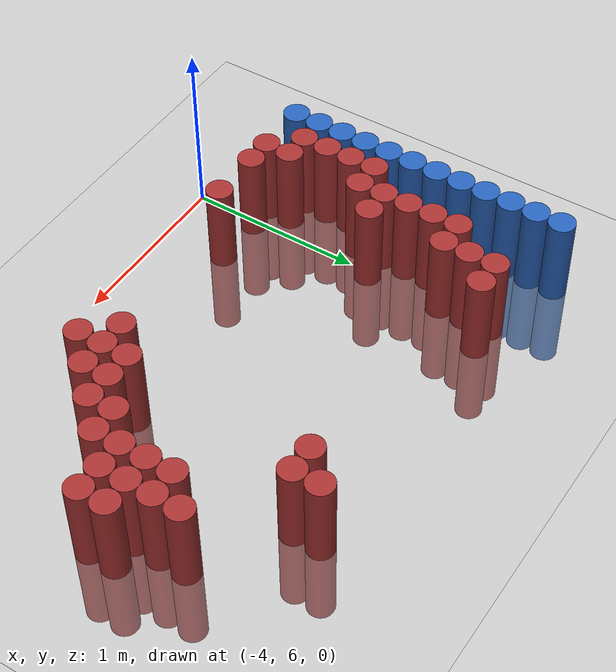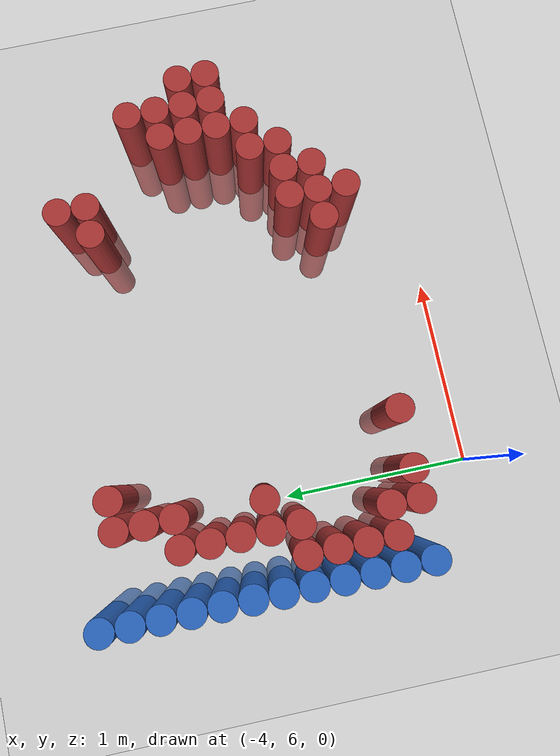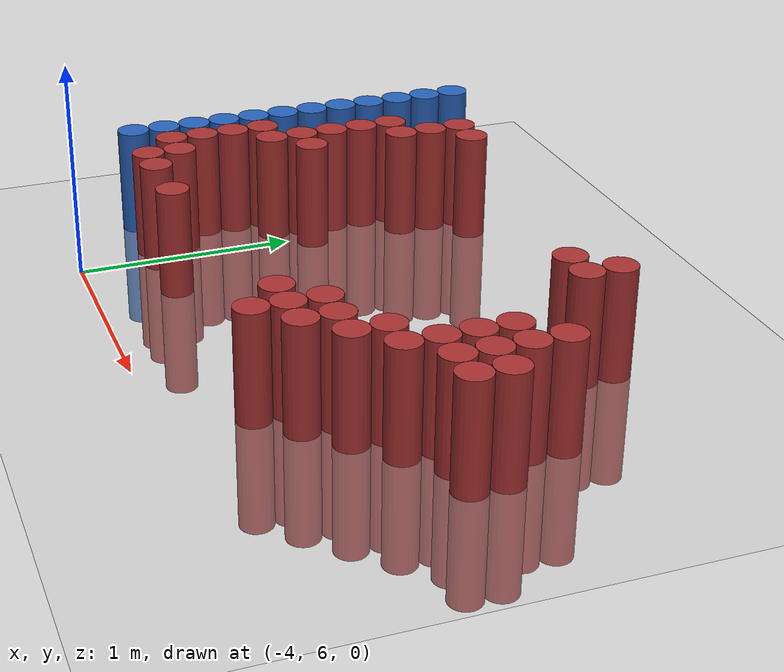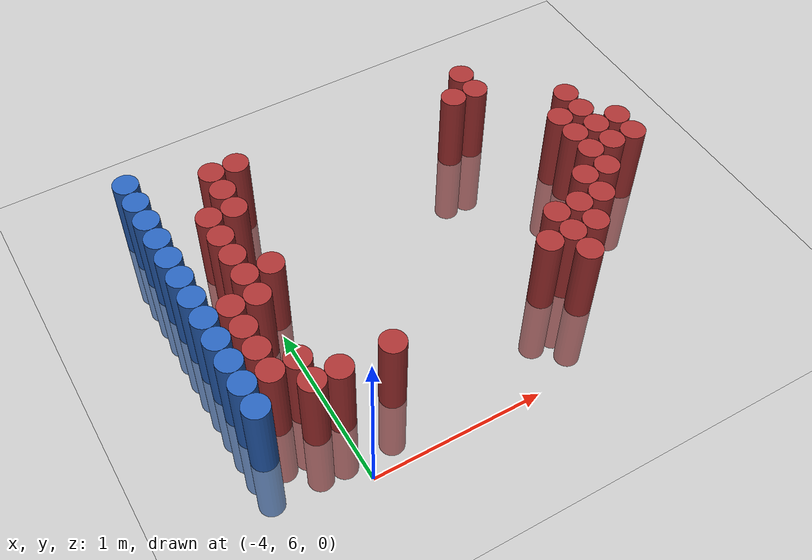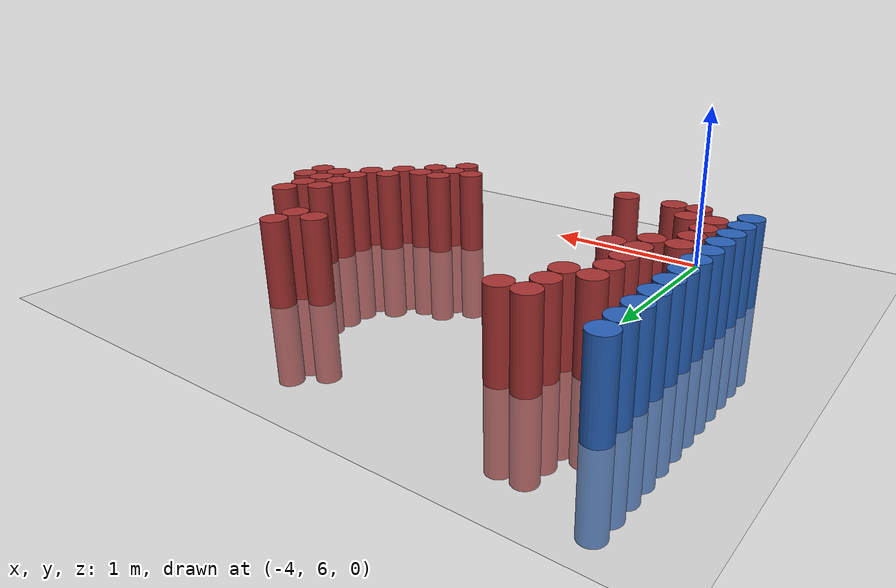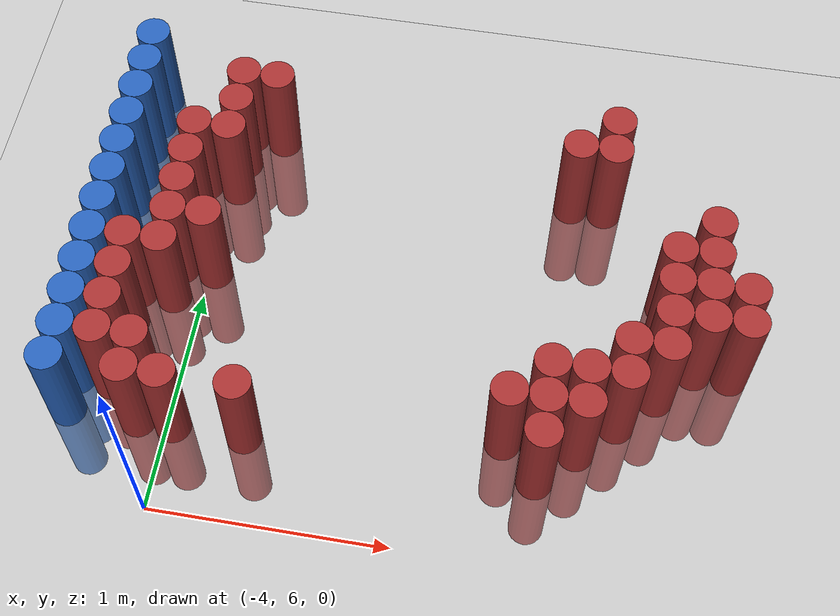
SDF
<sdf version="1.6">
 <world name="default">
  <model name="ground_plane">
   <static>1</static>
   <link name="link">
    <collision name="collision">
     <geometry><plane><normal>0 0 1</normal><size>100 100</size></plane></geometry>
     <surface><friction><ode><mu>100</mu><mu2>50</mu2></ode></friction></surface>
    </collision>
    <visual name="visual">
     <cast_shadows>0</cast_shadows>
     <geometry><plane><normal>0 0 1</normal><size>100 100</size></plane></geometry>
     <material>
      <script><uri>file://media/materials/scripts/gazebo.material</uri><name>Gazebo/Grey</name></script>
     </material>
    </visual>
   </link>
  </model>
  <model name="unit_cylinder_104">
   <static>1</static>
   <pose>-4.425000 6.375000 0.000000 0.000000 0.000000 0.000000</pose>
   <link name="link">
    <inertial>
     <mass>1</mass>
     <inertia><ixx>0.145833</ixx><ixy>0</ixy><ixz>0</ixz><iyy>0.145833</iyy><iyz>0</iyz><izz>0.125</izz></inertia>
    </inertial>
    <collision name="collision">
     <geometry><cylinder><radius>0.075000</radius><length>1</length></cylinder></geometry>
    </collision>
    <visual name="visual">
     <geometry><cylinder><radius>0.075000</radius><length>1</length></cylinder></geometry>
     <material>
      <ambient>0.152000 0.379000 0.720000 1</ambient>
      <diffuse>0.152000 0.379000 0.720000 1</diffuse>
     </material>
     <material>
      <script><name>Gazebo/Grey</name><uri>file://media/materials/scripts/gazebo.material</uri></script>
     </material>
    </visual>
   </link>
  </model>
  <model name="unit_cylinder_105">
   <static>1</static>
   <pose>-4.425000 6.525000 0.000000 0.000000 0.000000 0.000000</pose>
   <link name="link">
    <inertial>
     <mass>1</mass>
     <inertia><ixx>0.145833</ixx><ixy>0</ixy><ixz>0</ixz><iyy>0.145833</iyy><iyz>0</iyz><izz>0.125</izz></inertia>
    </inertial>
    <collision name="collision">
     <geometry><cylinder><radius>0.075000</radius><length>1</length></cylinder></geometry>
    </collision>
    <visual name="visual">
     <geometry><cylinder><radius>0.075000</radius><length>1</length></cylinder></geometry>
     <material>
      <ambient>0.152000 0.379000 0.720000 1</ambient>
      <diffuse>0.152000 0.379000 0.720000 1</diffuse>
     </material>
     <material>
      <script><name>Gazebo/Grey</name><uri>file://media/materials/scripts/gazebo.material</uri></script>
     </material>
    </visual>
   </link>
  </model>
  <model name="unit_cylinder_106">
   <static>1</static>
   <pose>-4.425000 6.675000 0.000000 0.000000 0.000000 0.000000</pose>
   <link name="link">
    <inertial>
     <mass>1</mass>
     <inertia><ixx>0.145833</ixx><ixy>0</ixy><ixz>0</ixz><iyy>0.145833</iyy><iyz>0</iyz><izz>0.125</izz></inertia>
    </inertial>
    <collision name="collision">
     <geometry><cylinder><radius>0.075000</radius><length>1</length></cylinder></geometry>
    </collision>
    <visual name="visual">
     <geometry><cylinder><radius>0.075000</radius><length>1</length></cylinder></geometry>
     <material>
      <ambient>0.152000 0.379000 0.720000 1</ambient>
      <diffuse>0.152000 0.379000 0.720000 1</diffuse>
     </material>
     <material>
      <script><name>Gazebo/Grey</name><uri>file://media/materials/scripts/gazebo.material</uri></script>
     </material>
    </visual>
   </link>
  </model>
  <model name="unit_cylinder_107">
   <static>1</static>
   <pose>-4.425000 6.825000 0.000000 0.000000 0.000000 0.000000</pose>
   <link name="link">
    <inertial>
     <mass>1</mass>
     <inertia><ixx>0.145833</ixx><ixy>0</ixy><ixz>0</ixz><iyy>0.145833</iyy><iyz>0</iyz><izz>0.125</izz></inertia>
    </inertial>
    <collision name="collision">
     <geometry><cylinder><radius>0.075000</radius><length>1</length></cylinder></geometry>
    </collision>
    <visual name="visual">
     <geometry><cylinder><radius>0.075000</radius><length>1</length></cylinder></geometry>
     <material>
      <ambient>0.152000 0.379000 0.720000 1</ambient>
      <diffuse>0.152000 0.379000 0.720000 1</diffuse>
     </material>
     <material>
      <script><name>Gazebo/Grey</name><uri>file://media/materials/scripts/gazebo.material</uri></script>
     </material>
    </visual>
   </link>
  </model>
  <model name="unit_cylinder_108">
   <static>1</static>
   <pose>-4.425000 6.975000 0.000000 0.000000 0.000000 0.000000</pose>
   <link name="link">
    <inertial>
     <mass>1</mass>
     <inertia><ixx>0.145833</ixx><ixy>0</ixy><ixz>0</ixz><iyy>0.145833</iyy><iyz>0</iyz><izz>0.125</izz></inertia>
    </inertial>
    <collision name="collision">
     <geometry><cylinder><radius>0.075000</radius><length>1</length></cylinder></geometry>
    </collision>
    <visual name="visual">
     <geometry><cylinder><radius>0.075000</radius><length>1</length></cylinder></geometry>
     <material>
      <ambient>0.152000 0.379000 0.720000 1</ambient>
      <diffuse>0.152000 0.379000 0.720000 1</diffuse>
     </material>
     <material>
      <script><name>Gazebo/Grey</name><uri>file://media/materials/scripts/gazebo.material</uri></script>
     </material>
    </visual>
   </link>
  </model>
  <model name="unit_cylinder_109">
   <static>1</static>
   <pose>-4.425000 7.125000 0.000000 0.000000 0.000000 0.000000</pose>
   <link name="link">
    <inertial>
     <mass>1</mass>
     <inertia><ixx>0.145833</ixx><ixy>0</ixy><ixz>0</ixz><iyy>0.145833</iyy><iyz>0</iyz><izz>0.125</izz></inertia>
    </inertial>
    <collision name="collision">
     <geometry><cylinder><radius>0.075000</radius><length>1</length></cylinder></geometry>
    </collision>
    <visual name="visual">
     <geometry><cylinder><radius>0.075000</radius><length>1</length></cylinder></geometry>
     <material>
      <ambient>0.152000 0.379000 0.720000 1</ambient>
      <diffuse>0.152000 0.379000 0.720000 1</diffuse>
     </material>
     <material>
      <script><name>Gazebo/Grey</name><uri>file://media/materials/scripts/gazebo.material</uri></script>
     </material>
    </visual>
   </link>
  </model>
  <model name="unit_cylinder_110">
   <static>1</static>
   <pose>-4.425000 7.275000 0.000000 0.000000 0.000000 0.000000</pose>
   <link name="link">
    <inertial>
     <mass>1</mass>
     <inertia><ixx>0.145833</ixx><ixy>0</ixy><ixz>0</ixz><iyy>0.145833</iyy><iyz>0</iyz><izz>0.125</izz></inertia>
    </inertial>
    <collision name="collision">
     <geometry><cylinder><radius>0.075000</radius><length>1</length></cylinder></geometry>
    </collision>
    <visual name="visual">
     <geometry><cylinder><radius>0.075000</radius><length>1</length></cylinder></geometry>
     <material>
      <ambient>0.152000 0.379000 0.720000 1</ambient>
      <diffuse>0.152000 0.379000 0.720000 1</diffuse>
     </material>
     <material>
      <script><name>Gazebo/Grey</name><uri>file://media/materials/scripts/gazebo.material</uri></script>
     </material>
    </visual>
   </link>
  </model>
  <model name="unit_cylinder_111">
   <static>1</static>
   <pose>-4.425000 7.425000 0.000000 0.000000 0.000000 0.000000</pose>
   <link name="link">
    <inertial>
     <mass>1</mass>
     <inertia><ixx>0.145833</ixx><ixy>0</ixy><ixz>0</ixz><iyy>0.145833</iyy><iyz>0</iyz><izz>0.125</izz></inertia>
    </inertial>
    <collision name="collision">
     <geometry><cylinder><radius>0.075000</radius><length>1</length></cylinder></geometry>
    </collision>
    <visual name="visual">
     <geometry><cylinder><radius>0.075000</radius><length>1</length></cylinder></geometry>
     <material>
      <ambient>0.152000 0.379000 0.720000 1</ambient>
      <diffuse>0.152000 0.379000 0.720000 1</diffuse>
     </material>
     <material>
      <script><name>Gazebo/Grey</name><uri>file://media/materials/scripts/gazebo.material</uri></script>
     </material>
    </visual>
   </link>
  </model>
  <model name="unit_cylinder_112">
   <static>1</static>
   <pose>-4.425000 7.575000 0.000000 0.000000 0.000000 0.000000</pose>
   <link name="link">
    <inertial>
     <mass>1</mass>
     <inertia><ixx>0.145833</ixx><ixy>0</ixy><ixz>0</ixz><iyy>0.145833</iyy><iyz>0</iyz><izz>0.125</izz></inertia>
    </inertial>
    <collision name="collision">
     <geometry><cylinder><radius>0.075000</radius><length>1</length></cylinder></geometry>
    </collision>
    <visual name="visual">
     <geometry><cylinder><radius>0.075000</radius><length>1</length></cylinder></geometry>
     <material>
      <ambient>0.152000 0.379000 0.720000 1</ambient>
      <diffuse>0.152000 0.379000 0.720000 1</diffuse>
     </material>
     <material>
      <script><name>Gazebo/Grey</name><uri>file://media/materials/scripts/gazebo.material</uri></script>
     </material>
    </visual>
   </link>
  </model>
  <model name="unit_cylinder_113">
   <static>1</static>
   <pose>-4.425000 7.725000 0.000000 0.000000 0.000000 0.000000</pose>
   <link name="link">
    <inertial>
     <mass>1</mass>
     <inertia><ixx>0.145833</ixx><ixy>0</ixy><ixz>0</ixz><iyy>0.145833</iyy><iyz>0</iyz><izz>0.125</izz></inertia>
    </inertial>
    <collision name="collision">
     <geometry><cylinder><radius>0.075000</radius><length>1</length></cylinder></geometry>
    </collision>
    <visual name="visual">
     <geometry><cylinder><radius>0.075000</radius><length>1</length></cylinder></geometry>
     <material>
      <ambient>0.152000 0.379000 0.720000 1</ambient>
      <diffuse>0.152000 0.379000 0.720000 1</diffuse>
     </material>
     <material>
      <script><name>Gazebo/Grey</name><uri>file://media/materials/scripts/gazebo.material</uri></script>
     </material>
    </visual>
   </link>
  </model>
  <model name="unit_cylinder_114">
   <static>1</static>
   <pose>-4.425000 7.875000 0.000000 0.000000 0.000000 0.000000</pose>
   <link name="link">
    <inertial>
     <mass>1</mass>
     <inertia><ixx>0.145833</ixx><ixy>0</ixy><ixz>0</ixz><iyy>0.145833</iyy><iyz>0</iyz><izz>0.125</izz></inertia>
    </inertial>
    <collision name="collision">
     <geometry><cylinder><radius>0.075000</radius><length>1</length></cylinder></geometry>
    </collision>
    <visual name="visual">
     <geometry><cylinder><radius>0.075000</radius><length>1</length></cylinder></geometry>
     <material>
      <ambient>0.152000 0.379000 0.720000 1</ambient>
      <diffuse>0.152000 0.379000 0.720000 1</diffuse>
     </material>
     <material>
      <script><name>Gazebo/Grey</name><uri>file://media/materials/scripts/gazebo.material</uri></script>
     </material>
    </visual>
   </link>
  </model>
  <model name="unit_cylinder_115">
   <static>1</static>
   <pose>-4.425000 8.025000 0.000000 0.000000 0.000000 0.000000</pose>
   <link name="link">
    <inertial>
     <mass>1</mass>
     <inertia><ixx>0.145833</ixx><ixy>0</ixy><ixz>0</ixz><iyy>0.145833</iyy><iyz>0</iyz><izz>0.125</izz></inertia>
    </inertial>
    <collision name="collision">
     <geometry><cylinder><radius>0.075000</radius><length>1</length></cylinder></geometry>
    </collision>
    <visual name="visual">
     <geometry><cylinder><radius>0.075000</radius><length>1</length></cylinder></geometry>
     <material>
      <ambient>0.152000 0.379000 0.720000 1</ambient>
      <diffuse>0.152000 0.379000 0.720000 1</diffuse>
     </material>
     <material>
      <script><name>Gazebo/Grey</name><uri>file://media/materials/scripts/gazebo.material</uri></script>
     </material>
    </visual>
   </link>
  </model>
  <model name="unit_cylinder_131">
   <static>1</static>
   <pose>-4.275000 6.525000 0.000000 0.000000 0.000000 0.000000</pose>
   <link name="link">
    <inertial>
     <mass>1</mass>
     <inertia><ixx>0.145833</ixx><ixy>0</ixy><ixz>0</ixz><iyy>0.145833</iyy><iyz>0</iyz><izz>0.125</izz></inertia>
    </inertial>
    <collision name="collision">
     <geometry><cylinder><radius>0.075000</radius><length>1</length></cylinder></geometry>
    </collision>
    <visual name="visual">
     <geometry><cylinder><radius>0.075000</radius><length>1</length></cylinder></geometry>
     <material>
      <ambient>0.648000 0.192000 0.192000 1</ambient>
      <diffuse>0.648000 0.192000 0.192000 1</diffuse>
     </material>
     <material>
      <script><name>Gazebo/Grey</name><uri>file://media/materials/scripts/gazebo.material</uri></script>
     </material>
    </visual>
   </link>
  </model>
  <model name="unit_cylinder_132">
   <static>1</static>
   <pose>-4.275000 6.675000 0.000000 0.000000 0.000000 0.000000</pose>
   <link name="link">
    <inertial>
     <mass>1</mass>
     <inertia><ixx>0.145833</ixx><ixy>0</ixy><ixz>0</ixz><iyy>0.145833</iyy><iyz>0</iyz><izz>0.125</izz></inertia>
    </inertial>
    <collision name="collision">
     <geometry><cylinder><radius>0.075000</radius><length>1</length></cylinder></geometry>
    </collision>
    <visual name="visual">
     <geometry><cylinder><radius>0.075000</radius><length>1</length></cylinder></geometry>
     <material>
      <ambient>0.648000 0.192000 0.192000 1</ambient>
      <diffuse>0.648000 0.192000 0.192000 1</diffuse>
     </material>
     <material>
      <script><name>Gazebo/Grey</name><uri>file://media/materials/scripts/gazebo.material</uri></script>
     </material>
    </visual>
   </link>
  </model>
  <model name="unit_cylinder_133">
   <static>1</static>
   <pose>-4.275000 6.825000 0.000000 0.000000 0.000000 0.000000</pose>
   <link name="link">
    <inertial>
     <mass>1</mass>
     <inertia><ixx>0.145833</ixx><ixy>0</ixy><ixz>0</ixz><iyy>0.145833</iyy><iyz>0</iyz><izz>0.125</izz></inertia>
    </inertial>
    <collision name="collision">
     <geometry><cylinder><radius>0.075000</radius><length>1</length></cylinder></geometry>
    </collision>
    <visual name="visual">
     <geometry><cylinder><radius>0.075000</radius><length>1</length></cylinder></geometry>
     <material>
      <ambient>0.648000 0.192000 0.192000 1</ambient>
      <diffuse>0.648000 0.192000 0.192000 1</diffuse>
     </material>
     <material>
      <script><name>Gazebo/Grey</name><uri>file://media/materials/scripts/gazebo.material</uri></script>
     </material>
    </visual>
   </link>
  </model>
  <model name="unit_cylinder_134">
   <static>1</static>
   <pose>-4.275000 6.975000 0.000000 0.000000 0.000000 0.000000</pose>
   <link name="link">
    <inertial>
     <mass>1</mass>
     <inertia><ixx>0.145833</ixx><ixy>0</ixy><ixz>0</ixz><iyy>0.145833</iyy><iyz>0</iyz><izz>0.125</izz></inertia>
    </inertial>
    <collision name="collision">
     <geometry><cylinder><radius>0.075000</radius><length>1</length></cylinder></geometry>
    </collision>
    <visual name="visual">
     <geometry><cylinder><radius>0.075000</radius><length>1</length></cylinder></geometry>
     <material>
      <ambient>0.648000 0.192000 0.192000 1</ambient>
      <diffuse>0.648000 0.192000 0.192000 1</diffuse>
     </material>
     <material>
      <script><name>Gazebo/Grey</name><uri>file://media/materials/scripts/gazebo.material</uri></script>
     </material>
    </visual>
   </link>
  </model>
  <model name="unit_cylinder_142">
   <static>1</static>
   <pose>-4.125000 6.375000 0.000000 0.000000 0.000000 0.000000</pose>
   <link name="link">
    <inertial>
     <mass>1</mass>
     <inertia><ixx>0.145833</ixx><ixy>0</ixy><ixz>0</ixz><iyy>0.145833</iyy><iyz>0</iyz><izz>0.125</izz></inertia>
    </inertial>
    <collision name="collision">
     <geometry><cylinder><radius>0.075000</radius><length>1</length></cylinder></geometry>
    </collision>
    <visual name="visual">
     <geometry><cylinder><radius>0.075000</radius><length>1</length></cylinder></geometry>
     <material>
      <ambient>0.648000 0.192000 0.192000 1</ambient>
      <diffuse>0.648000 0.192000 0.192000 1</diffuse>
     </material>
     <material>
      <script><name>Gazebo/Grey</name><uri>file://media/materials/scripts/gazebo.material</uri></script>
     </material>
    </visual>
   </link>
  </model>
  <model name="unit_cylinder_143">
   <static>1</static>
   <pose>-4.125000 6.525000 0.000000 0.000000 0.000000 0.000000</pose>
   <link name="link">
    <inertial>
     <mass>1</mass>
     <inertia><ixx>0.145833</ixx><ixy>0</ixy><ixz>0</ixz><iyy>0.145833</iyy><iyz>0</iyz><izz>0.125</izz></inertia>
    </inertial>
    <collision name="collision">
     <geometry><cylinder><radius>0.075000</radius><length>1</length></cylinder></geometry>
    </collision>
    <visual name="visual">
     <geometry><cylinder><radius>0.075000</radius><length>1</length></cylinder></geometry>
     <material>
      <ambient>0.648000 0.192000 0.192000 1</ambient>
      <diffuse>0.648000 0.192000 0.192000 1</diffuse>
     </material>
     <material>
      <script><name>Gazebo/Grey</name><uri>file://media/materials/scripts/gazebo.material</uri></script>
     </material>
    </visual>
   </link>
  </model>
  <model name="unit_cylinder_144">
   <static>1</static>
   <pose>-4.125000 6.975000 0.000000 0.000000 0.000000 0.000000</pose>
   <link name="link">
    <inertial>
     <mass>1</mass>
     <inertia><ixx>0.145833</ixx><ixy>0</ixy><ixz>0</ixz><iyy>0.145833</iyy><iyz>0</iyz><izz>0.125</izz></inertia>
    </inertial>
    <collision name="collision">
     <geometry><cylinder><radius>0.075000</radius><length>1</length></cylinder></geometry>
    </collision>
    <visual name="visual">
     <geometry><cylinder><radius>0.075000</radius><length>1</length></cylinder></geometry>
     <material>
      <ambient>0.648000 0.192000 0.192000 1</ambient>
      <diffuse>0.648000 0.192000 0.192000 1</diffuse>
     </material>
     <material>
      <script><name>Gazebo/Grey</name><uri>file://media/materials/scripts/gazebo.material</uri></script>
     </material>
    </visual>
   </link>
  </model>
  <model name="unit_cylinder_145">
   <static>1</static>
   <pose>-4.125000 7.125000 0.000000 0.000000 0.000000 0.000000</pose>
   <link name="link">
    <inertial>
     <mass>1</mass>
     <inertia><ixx>0.145833</ixx><ixy>0</ixy><ixz>0</ixz><iyy>0.145833</iyy><iyz>0</iyz><izz>0.125</izz></inertia>
    </inertial>
    <collision name="collision">
     <geometry><cylinder><radius>0.075000</radius><length>1</length></cylinder></geometry>
    </collision>
    <visual name="visual">
     <geometry><cylinder><radius>0.075000</radius><length>1</length></cylinder></geometry>
     <material>
      <ambient>0.648000 0.192000 0.192000 1</ambient>
      <diffuse>0.648000 0.192000 0.192000 1</diffuse>
     </material>
     <material>
      <script><name>Gazebo/Grey</name><uri>file://media/materials/scripts/gazebo.material</uri></script>
     </material>
    </visual>
   </link>
  </model>
  <model name="unit_cylinder_146">
   <static>1</static>
   <pose>-4.125000 7.275000 0.000000 0.000000 0.000000 0.000000</pose>
   <link name="link">
    <inertial>
     <mass>1</mass>
     <inertia><ixx>0.145833</ixx><ixy>0</ixy><ixz>0</ixz><iyy>0.145833</iyy><iyz>0</iyz><izz>0.125</izz></inertia>
    </inertial>
    <collision name="collision">
     <geometry><cylinder><radius>0.075000</radius><length>1</length></cylinder></geometry>
    </collision>
    <visual name="visual">
     <geometry><cylinder><radius>0.075000</radius><length>1</length></cylinder></geometry>
     <material>
      <ambient>0.648000 0.192000 0.192000 1</ambient>
      <diffuse>0.648000 0.192000 0.192000 1</diffuse>
     </material>
     <material>
      <script><name>Gazebo/Grey</name><uri>file://media/materials/scripts/gazebo.material</uri></script>
     </material>
    </visual>
   </link>
  </model>
  <model name="unit_cylinder_147">
   <static>1</static>
   <pose>-4.125000 7.425000 0.000000 0.000000 0.000000 0.000000</pose>
   <link name="link">
    <inertial>
     <mass>1</mass>
     <inertia><ixx>0.145833</ixx><ixy>0</ixy><ixz>0</ixz><iyy>0.145833</iyy><iyz>0</iyz><izz>0.125</izz></inertia>
    </inertial>
    <collision name="collision">
     <geometry><cylinder><radius>0.075000</radius><length>1</length></cylinder></geometry>
    </collision>
    <visual name="visual">
     <geometry><cylinder><radius>0.075000</radius><length>1</length></cylinder></geometry>
     <material>
      <ambient>0.648000 0.192000 0.192000 1</ambient>
      <diffuse>0.648000 0.192000 0.192000 1</diffuse>
     </material>
     <material>
      <script><name>Gazebo/Grey</name><uri>file://media/materials/scripts/gazebo.material</uri></script>
     </material>
    </visual>
   </link>
  </model>
  <model name="unit_cylinder_148">
   <static>1</static>
   <pose>-4.125000 7.575000 0.000000 0.000000 0.000000 0.000000</pose>
   <link name="link">
    <inertial>
     <mass>1</mass>
     <inertia><ixx>0.145833</ixx><ixy>0</ixy><ixz>0</ixz><iyy>0.145833</iyy><iyz>0</iyz><izz>0.125</izz></inertia>
    </inertial>
    <collision name="collision">
     <geometry><cylinder><radius>0.075000</radius><length>1</length></cylinder></geometry>
    </collision>
    <visual name="visual">
     <geometry><cylinder><radius>0.075000</radius><length>1</length></cylinder></geometry>
     <material>
      <ambient>0.648000 0.192000 0.192000 1</ambient>
      <diffuse>0.648000 0.192000 0.192000 1</diffuse>
     </material>
     <material>
      <script><name>Gazebo/Grey</name><uri>file://media/materials/scripts/gazebo.material</uri></script>
     </material>
    </visual>
   </link>
  </model>
  <model name="unit_cylinder_157">
   <static>1</static>
   <pose>-3.975000 6.375000 0.000000 0.000000 0.000000 0.000000</pose>
   <link name="link">
    <inertial>
     <mass>1</mass>
     <inertia><ixx>0.145833</ixx><ixy>0</ixy><ixz>0</ixz><iyy>0.145833</iyy><iyz>0</iyz><izz>0.125</izz></inertia>
    </inertial>
    <collision name="collision">
     <geometry><cylinder><radius>0.075000</radius><length>1</length></cylinder></geometry>
    </collision>
    <visual name="visual">
     <geometry><cylinder><radius>0.075000</radius><length>1</length></cylinder></geometry>
     <material>
      <ambient>0.648000 0.192000 0.192000 1</ambient>
      <diffuse>0.648000 0.192000 0.192000 1</diffuse>
     </material>
     <material>
      <script><name>Gazebo/Grey</name><uri>file://media/materials/scripts/gazebo.material</uri></script>
     </material>
    </visual>
   </link>
  </model>
  <model name="unit_cylinder_158">
   <static>1</static>
   <pose>-3.975000 7.125000 0.000000 0.000000 0.000000 0.000000</pose>
   <link name="link">
    <inertial>
     <mass>1</mass>
     <inertia><ixx>0.145833</ixx><ixy>0</ixy><ixz>0</ixz><iyy>0.145833</iyy><iyz>0</iyz><izz>0.125</izz></inertia>
    </inertial>
    <collision name="collision">
     <geometry><cylinder><radius>0.075000</radius><length>1</length></cylinder></geometry>
    </collision>
    <visual name="visual">
     <geometry><cylinder><radius>0.075000</radius><length>1</length></cylinder></geometry>
     <material>
      <ambient>0.648000 0.192000 0.192000 1</ambient>
      <diffuse>0.648000 0.192000 0.192000 1</diffuse>
     </material>
     <material>
      <script><name>Gazebo/Grey</name><uri>file://media/materials/scripts/gazebo.material</uri></script>
     </material>
    </visual>
   </link>
  </model>
  <model name="unit_cylinder_159">
   <static>1</static>
   <pose>-3.975000 7.575000 0.000000 0.000000 0.000000 0.000000</pose>
   <link name="link">
    <inertial>
     <mass>1</mass>
     <inertia><ixx>0.145833</ixx><ixy>0</ixy><ixz>0</ixz><iyy>0.145833</iyy><iyz>0</iyz><izz>0.125</izz></inertia>
    </inertial>
    <collision name="collision">
     <geometry><cylinder><radius>0.075000</radius><length>1</length></cylinder></geometry>
    </collision>
    <visual name="visual">
     <geometry><cylinder><radius>0.075000</radius><length>1</length></cylinder></geometry>
     <material>
      <ambient>0.648000 0.192000 0.192000 1</ambient>
      <diffuse>0.648000 0.192000 0.192000 1</diffuse>
     </material>
     <material>
      <script><name>Gazebo/Grey</name><uri>file://media/materials/scripts/gazebo.material</uri></script>
     </material>
    </visual>
   </link>
  </model>
  <model name="unit_cylinder_160">
   <static>1</static>
   <pose>-3.975000 7.725000 0.000000 0.000000 0.000000 0.000000</pose>
   <link name="link">
    <inertial>
     <mass>1</mass>
     <inertia><ixx>0.145833</ixx><ixy>0</ixy><ixz>0</ixz><iyy>0.145833</iyy><iyz>0</iyz><izz>0.125</izz></inertia>
    </inertial>
    <collision name="collision">
     <geometry><cylinder><radius>0.075000</radius><length>1</length></cylinder></geometry>
    </collision>
    <visual name="visual">
     <geometry><cylinder><radius>0.075000</radius><length>1</length></cylinder></geometry>
     <material>
      <ambient>0.648000 0.192000 0.192000 1</ambient>
      <diffuse>0.648000 0.192000 0.192000 1</diffuse>
     </material>
     <material>
      <script><name>Gazebo/Grey</name><uri>file://media/materials/scripts/gazebo.material</uri></script>
     </material>
    </visual>
   </link>
  </model>
  <model name="unit_cylinder_161">
   <static>1</static>
   <pose>-3.975000 7.875000 0.000000 0.000000 0.000000 0.000000</pose>
   <link name="link">
    <inertial>
     <mass>1</mass>
     <inertia><ixx>0.145833</ixx><ixy>0</ixy><ixz>0</ixz><iyy>0.145833</iyy><iyz>0</iyz><izz>0.125</izz></inertia>
    </inertial>
    <collision name="collision">
     <geometry><cylinder><radius>0.075000</radius><length>1</length></cylinder></geometry>
    </collision>
    <visual name="visual">
     <geometry><cylinder><radius>0.075000</radius><length>1</length></cylinder></geometry>
     <material>
      <ambient>0.648000 0.192000 0.192000 1</ambient>
      <diffuse>0.648000 0.192000 0.192000 1</diffuse>
     </material>
     <material>
      <script><name>Gazebo/Grey</name><uri>file://media/materials/scripts/gazebo.material</uri></script>
     </material>
    </visual>
   </link>
  </model>
  <model name="unit_cylinder_168">
   <static>1</static>
   <pose>-3.825000 7.875000 0.000000 0.000000 0.000000 0.000000</pose>
   <link name="link">
    <inertial>
     <mass>1</mass>
     <inertia><ixx>0.145833</ixx><ixy>0</ixy><ixz>0</ixz><iyy>0.145833</iyy><iyz>0</iyz><izz>0.125</izz></inertia>
    </inertial>
    <collision name="collision">
     <geometry><cylinder><radius>0.075000</radius><length>1</length></cylinder></geometry>
    </collision>
    <visual name="visual">
     <geometry><cylinder><radius>0.075000</radius><length>1</length></cylinder></geometry>
     <material>
      <ambient>0.648000 0.192000 0.192000 1</ambient>
      <diffuse>0.648000 0.192000 0.192000 1</diffuse>
     </material>
     <material>
      <script><name>Gazebo/Grey</name><uri>file://media/materials/scripts/gazebo.material</uri></script>
     </material>
    </visual>
   </link>
  </model>
  <model name="unit_cylinder_174">
   <static>1</static>
   <pose>-3.675000 6.375000 0.000000 0.000000 0.000000 0.000000</pose>
   <link name="link">
    <inertial>
     <mass>1</mass>
     <inertia><ixx>0.145833</ixx><ixy>0</ixy><ixz>0</ixz><iyy>0.145833</iyy><iyz>0</iyz><izz>0.125</izz></inertia>
    </inertial>
    <collision name="collision">
     <geometry><cylinder><radius>0.075000</radius><length>1</length></cylinder></geometry>
    </collision>
    <visual name="visual">
     <geometry><cylinder><radius>0.075000</radius><length>1</length></cylinder></geometry>
     <material>
      <ambient>0.648000 0.192000 0.192000 1</ambient>
      <diffuse>0.648000 0.192000 0.192000 1</diffuse>
     </material>
     <material>
      <script><name>Gazebo/Grey</name><uri>file://media/materials/scripts/gazebo.material</uri></script>
     </material>
    </visual>
   </link>
  </model>
  <model name="unit_cylinder_183">
   <static>1</static>
   <pose>-2.625000 6.525000 0.000000 0.000000 0.000000 0.000000</pose>
   <link name="link">
    <inertial>
     <mass>1</mass>
     <inertia><ixx>0.145833</ixx><ixy>0</ixy><ixz>0</ixz><iyy>0.145833</iyy><iyz>0</iyz><izz>0.125</izz></inertia>
    </inertial>
    <collision name="collision">
     <geometry><cylinder><radius>0.075000</radius><length>1</length></cylinder></geometry>
    </collision>
    <visual name="visual">
     <geometry><cylinder><radius>0.075000</radius><length>1</length></cylinder></geometry>
     <material>
      <ambient>0.648000 0.192000 0.192000 1</ambient>
      <diffuse>0.648000 0.192000 0.192000 1</diffuse>
     </material>
     <material>
      <script><name>Gazebo/Grey</name><uri>file://media/materials/scripts/gazebo.material</uri></script>
     </material>
    </visual>
   </link>
  </model>
  <model name="unit_cylinder_187">
   <static>1</static>
   <pose>-2.475000 6.375000 0.000000 0.000000 0.000000 0.000000</pose>
   <link name="link">
    <inertial>
     <mass>1</mass>
     <inertia><ixx>0.145833</ixx><ixy>0</ixy><ixz>0</ixz><iyy>0.145833</iyy><iyz>0</iyz><izz>0.125</izz></inertia>
    </inertial>
    <collision name="collision">
     <geometry><cylinder><radius>0.075000</radius><length>1</length></cylinder></geometry>
    </collision>
    <visual name="visual">
     <geometry><cylinder><radius>0.075000</radius><length>1</length></cylinder></geometry>
     <material>
      <ambient>0.648000 0.192000 0.192000 1</ambient>
      <diffuse>0.648000 0.192000 0.192000 1</diffuse>
     </material>
     <material>
      <script><name>Gazebo/Grey</name><uri>file://media/materials/scripts/gazebo.material</uri></script>
     </material>
    </visual>
   </link>
  </model>
  <model name="unit_cylinder_188">
   <static>1</static>
   <pose>-2.475000 6.525000 0.000000 0.000000 0.000000 0.000000</pose>
   <link name="link">
    <inertial>
     <mass>1</mass>
     <inertia><ixx>0.145833</ixx><ixy>0</ixy><ixz>0</ixz><iyy>0.145833</iyy><iyz>0</iyz><izz>0.125</izz></inertia>
    </inertial>
    <collision name="collision">
     <geometry><cylinder><radius>0.075000</radius><length>1</length></cylinder></geometry>
    </collision>
    <visual name="visual">
     <geometry><cylinder><radius>0.075000</radius><length>1</length></cylinder></geometry>
     <material>
      <ambient>0.648000 0.192000 0.192000 1</ambient>
      <diffuse>0.648000 0.192000 0.192000 1</diffuse>
     </material>
     <material>
      <script><name>Gazebo/Grey</name><uri>file://media/materials/scripts/gazebo.material</uri></script>
     </material>
    </visual>
   </link>
  </model>
  <model name="unit_cylinder_189">
   <static>1</static>
   <pose>-2.475000 6.675000 0.000000 0.000000 0.000000 0.000000</pose>
   <link name="link">
    <inertial>
     <mass>1</mass>
     <inertia><ixx>0.145833</ixx><ixy>0</ixy><ixz>0</ixz><iyy>0.145833</iyy><iyz>0</iyz><izz>0.125</izz></inertia>
    </inertial>
    <collision name="collision">
     <geometry><cylinder><radius>0.075000</radius><length>1</length></cylinder></geometry>
    </collision>
    <visual name="visual">
     <geometry><cylinder><radius>0.075000</radius><length>1</length></cylinder></geometry>
     <material>
      <ambient>0.648000 0.192000 0.192000 1</ambient>
      <diffuse>0.648000 0.192000 0.192000 1</diffuse>
     </material>
     <material>
      <script><name>Gazebo/Grey</name><uri>file://media/materials/scripts/gazebo.material</uri></script>
     </material>
    </visual>
   </link>
  </model>
  <model name="unit_cylinder_190">
   <static>1</static>
   <pose>-2.475000 7.725000 0.000000 0.000000 0.000000 0.000000</pose>
   <link name="link">
    <inertial>
     <mass>1</mass>
     <inertia><ixx>0.145833</ixx><ixy>0</ixy><ixz>0</ixz><iyy>0.145833</iyy><iyz>0</iyz><izz>0.125</izz></inertia>
    </inertial>
    <collision name="collision">
     <geometry><cylinder><radius>0.075000</radius><length>1</length></cylinder></geometry>
    </collision>
    <visual name="visual">
     <geometry><cylinder><radius>0.075000</radius><length>1</length></cylinder></geometry>
     <material>
      <ambient>0.648000 0.192000 0.192000 1</ambient>
      <diffuse>0.648000 0.192000 0.192000 1</diffuse>
     </material>
     <material>
      <script><name>Gazebo/Grey</name><uri>file://media/materials/scripts/gazebo.material</uri></script>
     </material>
    </visual>
   </link>
  </model>
  <model name="unit_cylinder_196">
   <static>1</static>
   <pose>-2.325000 6.525000 0.000000 0.000000 0.000000 0.000000</pose>
   <link name="link">
    <inertial>
     <mass>1</mass>
     <inertia><ixx>0.145833</ixx><ixy>0</ixy><ixz>0</ixz><iyy>0.145833</iyy><iyz>0</iyz><izz>0.125</izz></inertia>
    </inertial>
    <collision name="collision">
     <geometry><cylinder><radius>0.075000</radius><length>1</length></cylinder></geometry>
    </collision>
    <visual name="visual">
     <geometry><cylinder><radius>0.075000</radius><length>1</length></cylinder></geometry>
     <material>
      <ambient>0.648000 0.192000 0.192000 1</ambient>
      <diffuse>0.648000 0.192000 0.192000 1</diffuse>
     </material>
     <material>
      <script><name>Gazebo/Grey</name><uri>file://media/materials/scripts/gazebo.material</uri></script>
     </material>
    </visual>
   </link>
  </model>
  <model name="unit_cylinder_197">
   <static>1</static>
   <pose>-2.325000 6.675000 0.000000 0.000000 0.000000 0.000000</pose>
   <link name="link">
    <inertial>
     <mass>1</mass>
     <inertia><ixx>0.145833</ixx><ixy>0</ixy><ixz>0</ixz><iyy>0.145833</iyy><iyz>0</iyz><izz>0.125</izz></inertia>
    </inertial>
    <collision name="collision">
     <geometry><cylinder><radius>0.075000</radius><length>1</length></cylinder></geometry>
    </collision>
    <visual name="visual">
     <geometry><cylinder><radius>0.075000</radius><length>1</length></cylinder></geometry>
     <material>
      <ambient>0.648000 0.192000 0.192000 1</ambient>
      <diffuse>0.648000 0.192000 0.192000 1</diffuse>
     </material>
     <material>
      <script><name>Gazebo/Grey</name><uri>file://media/materials/scripts/gazebo.material</uri></script>
     </material>
    </visual>
   </link>
  </model>
  <model name="unit_cylinder_198">
   <static>1</static>
   <pose>-2.325000 7.725000 0.000000 0.000000 0.000000 0.000000</pose>
   <link name="link">
    <inertial>
     <mass>1</mass>
     <inertia><ixx>0.145833</ixx><ixy>0</ixy><ixz>0</ixz><iyy>0.145833</iyy><iyz>0</iyz><izz>0.125</izz></inertia>
    </inertial>
    <collision name="collision">
     <geometry><cylinder><radius>0.075000</radius><length>1</length></cylinder></geometry>
    </collision>
    <visual name="visual">
     <geometry><cylinder><radius>0.075000</radius><length>1</length></cylinder></geometry>
     <material>
      <ambient>0.648000 0.192000 0.192000 1</ambient>
      <diffuse>0.648000 0.192000 0.192000 1</diffuse>
     </material>
     <material>
      <script><name>Gazebo/Grey</name><uri>file://media/materials/scripts/gazebo.material</uri></script>
     </material>
    </visual>
   </link>
  </model>
  <model name="unit_cylinder_199">
   <static>1</static>
   <pose>-2.325000 7.875000 0.000000 0.000000 0.000000 0.000000</pose>
   <link name="link">
    <inertial>
     <mass>1</mass>
     <inertia><ixx>0.145833</ixx><ixy>0</ixy><ixz>0</ixz><iyy>0.145833</iyy><iyz>0</iyz><izz>0.125</izz></inertia>
    </inertial>
    <collision name="collision">
     <geometry><cylinder><radius>0.075000</radius><length>1</length></cylinder></geometry>
    </collision>
    <visual name="visual">
     <geometry><cylinder><radius>0.075000</radius><length>1</length></cylinder></geometry>
     <material>
      <ambient>0.648000 0.192000 0.192000 1</ambient>
      <diffuse>0.648000 0.192000 0.192000 1</diffuse>
     </material>
     <material>
      <script><name>Gazebo/Grey</name><uri>file://media/materials/scripts/gazebo.material</uri></script>
     </material>
    </visual>
   </link>
  </model>
  <model name="unit_cylinder_207">
   <static>1</static>
   <pose>-2.175000 6.675000 0.000000 0.000000 0.000000 0.000000</pose>
   <link name="link">
    <inertial>
     <mass>1</mass>
     <inertia><ixx>0.145833</ixx><ixy>0</ixy><ixz>0</ixz><iyy>0.145833</iyy><iyz>0</iyz><izz>0.125</izz></inertia>
    </inertial>
    <collision name="collision">
     <geometry><cylinder><radius>0.075000</radius><length>1</length></cylinder></geometry>
    </collision>
    <visual name="visual">
     <geometry><cylinder><radius>0.075000</radius><length>1</length></cylinder></geometry>
     <material>
      <ambient>0.648000 0.192000 0.192000 1</ambient>
      <diffuse>0.648000 0.192000 0.192000 1</diffuse>
     </material>
     <material>
      <script><name>Gazebo/Grey</name><uri>file://media/materials/scripts/gazebo.material</uri></script>
     </material>
    </visual>
   </link>
  </model>
  <model name="unit_cylinder_208">
   <static>1</static>
   <pose>-2.175000 6.825000 0.000000 0.000000 0.000000 0.000000</pose>
   <link name="link">
    <inertial>
     <mass>1</mass>
     <inertia><ixx>0.145833</ixx><ixy>0</ixy><ixz>0</ixz><iyy>0.145833</iyy><iyz>0</iyz><izz>0.125</izz></inertia>
    </inertial>
    <collision name="collision">
     <geometry><cylinder><radius>0.075000</radius><length>1</length></cylinder></geometry>
    </collision>
    <visual name="visual">
     <geometry><cylinder><radius>0.075000</radius><length>1</length></cylinder></geometry>
     <material>
      <ambient>0.648000 0.192000 0.192000 1</ambient>
      <diffuse>0.648000 0.192000 0.192000 1</diffuse>
     </material>
     <material>
      <script><name>Gazebo/Grey</name><uri>file://media/materials/scripts/gazebo.material</uri></script>
     </material>
    </visual>
   </link>
  </model>
  <model name="unit_cylinder_215">
   <static>1</static>
   <pose>-2.025000 6.825000 0.000000 0.000000 0.000000 0.000000</pose>
   <link name="link">
    <inertial>
     <mass>1</mass>
     <inertia><ixx>0.145833</ixx><ixy>0</ixy><ixz>0</ixz><iyy>0.145833</iyy><iyz>0</iyz><izz>0.125</izz></inertia>
    </inertial>
    <collision name="collision">
     <geometry><cylinder><radius>0.075000</radius><length>1</length></cylinder></geometry>
    </collision>
    <visual name="visual">
     <geometry><cylinder><radius>0.075000</radius><length>1</length></cylinder></geometry>
     <material>
      <ambient>0.648000 0.192000 0.192000 1</ambient>
      <diffuse>0.648000 0.192000 0.192000 1</diffuse>
     </material>
     <material>
      <script><name>Gazebo/Grey</name><uri>file://media/materials/scripts/gazebo.material</uri></script>
     </material>
    </visual>
   </link>
  </model>
  <model name="unit_cylinder_216">
   <static>1</static>
   <pose>-2.025000 6.975000 0.000000 0.000000 0.000000 0.000000</pose>
   <link name="link">
    <inertial>
     <mass>1</mass>
     <inertia><ixx>0.145833</ixx><ixy>0</ixy><ixz>0</ixz><iyy>0.145833</iyy><iyz>0</iyz><izz>0.125</izz></inertia>
    </inertial>
    <collision name="collision">
     <geometry><cylinder><radius>0.075000</radius><length>1</length></cylinder></geometry>
    </collision>
    <visual name="visual">
     <geometry><cylinder><radius>0.075000</radius><length>1</length></cylinder></geometry>
     <material>
      <ambient>0.648000 0.192000 0.192000 1</ambient>
      <diffuse>0.648000 0.192000 0.192000 1</diffuse>
     </material>
     <material>
      <script><name>Gazebo/Grey</name><uri>file://media/materials/scripts/gazebo.material</uri></script>
     </material>
    </visual>
   </link>
  </model>
  <model name="unit_cylinder_217">
   <static>1</static>
   <pose>-2.025000 7.125000 0.000000 0.000000 0.000000 0.000000</pose>
   <link name="link">
    <inertial>
     <mass>1</mass>
     <inertia><ixx>0.145833</ixx><ixy>0</ixy><ixz>0</ixz><iyy>0.145833</iyy><iyz>0</iyz><izz>0.125</izz></inertia>
    </inertial>
    <collision name="collision">
     <geometry><cylinder><radius>0.075000</radius><length>1</length></cylinder></geometry>
    </collision>
    <visual name="visual">
     <geometry><cylinder><radius>0.075000</radius><length>1</length></cylinder></geometry>
     <material>
      <ambient>0.648000 0.192000 0.192000 1</ambient>
      <diffuse>0.648000 0.192000 0.192000 1</diffuse>
     </material>
     <material>
      <script><name>Gazebo/Grey</name><uri>file://media/materials/scripts/gazebo.material</uri></script>
     </material>
    </visual>
   </link>
  </model>
  <model name="unit_cylinder_218">
   <static>1</static>
   <pose>-2.025000 7.275000 0.000000 0.000000 0.000000 0.000000</pose>
   <link name="link">
    <inertial>
     <mass>1</mass>
     <inertia><ixx>0.145833</ixx><ixy>0</ixy><ixz>0</ixz><iyy>0.145833</iyy><iyz>0</iyz><izz>0.125</izz></inertia>
    </inertial>
    <collision name="collision">
     <geometry><cylinder><radius>0.075000</radius><length>1</length></cylinder></geometry>
    </collision>
    <visual name="visual">
     <geometry><cylinder><radius>0.075000</radius><length>1</length></cylinder></geometry>
     <material>
      <ambient>0.648000 0.192000 0.192000 1</ambient>
      <diffuse>0.648000 0.192000 0.192000 1</diffuse>
     </material>
     <material>
      <script><name>Gazebo/Grey</name><uri>file://media/materials/scripts/gazebo.material</uri></script>
     </material>
    </visual>
   </link>
  </model>
  <model name="unit_cylinder_221">
   <static>1</static>
   <pose>-1.875000 6.975000 0.000000 0.000000 0.000000 0.000000</pose>
   <link name="link">
    <inertial>
     <mass>1</mass>
     <inertia><ixx>0.145833</ixx><ixy>0</ixy><ixz>0</ixz><iyy>0.145833</iyy><iyz>0</iyz><izz>0.125</izz></inertia>
    </inertial>
    <collision name="collision">
     <geometry><cylinder><radius>0.075000</radius><length>1</length></cylinder></geometry>
    </collision>
    <visual name="visual">
     <geometry><cylinder><radius>0.075000</radius><length>1</length></cylinder></geometry>
     <material>
      <ambient>0.648000 0.192000 0.192000 1</ambient>
      <diffuse>0.648000 0.192000 0.192000 1</diffuse>
     </material>
     <material>
      <script><name>Gazebo/Grey</name><uri>file://media/materials/scripts/gazebo.material</uri></script>
     </material>
    </visual>
   </link>
  </model>
  <model name="unit_cylinder_222">
   <static>1</static>
   <pose>-1.875000 7.125000 0.000000 0.000000 0.000000 0.000000</pose>
   <link name="link">
    <inertial>
     <mass>1</mass>
     <inertia><ixx>0.145833</ixx><ixy>0</ixy><ixz>0</ixz><iyy>0.145833</iyy><iyz>0</iyz><izz>0.125</izz></inertia>
    </inertial>
    <collision name="collision">
     <geometry><cylinder><radius>0.075000</radius><length>1</length></cylinder></geometry>
    </collision>
    <visual name="visual">
     <geometry><cylinder><radius>0.075000</radius><length>1</length></cylinder></geometry>
     <material>
      <ambient>0.648000 0.192000 0.192000 1</ambient>
      <diffuse>0.648000 0.192000 0.192000 1</diffuse>
     </material>
     <material>
      <script><name>Gazebo/Grey</name><uri>file://media/materials/scripts/gazebo.material</uri></script>
     </material>
    </visual>
   </link>
  </model>
  <model name="unit_cylinder_223">
   <static>1</static>
   <pose>-1.875000 7.275000 0.000000 0.000000 0.000000 0.000000</pose>
   <link name="link">
    <inertial>
     <mass>1</mass>
     <inertia><ixx>0.145833</ixx><ixy>0</ixy><ixz>0</ixz><iyy>0.145833</iyy><iyz>0</iyz><izz>0.125</izz></inertia>
    </inertial>
    <collision name="collision">
     <geometry><cylinder><radius>0.075000</radius><length>1</length></cylinder></geometry>
    </collision>
    <visual name="visual">
     <geometry><cylinder><radius>0.075000</radius><length>1</length></cylinder></geometry>
     <material>
      <ambient>0.648000 0.192000 0.192000 1</ambient>
      <diffuse>0.648000 0.192000 0.192000 1</diffuse>
     </material>
     <material>
      <script><name>Gazebo/Grey</name><uri>file://media/materials/scripts/gazebo.material</uri></script>
     </material>
    </visual>
   </link>
  </model>
  <model name="unit_cylinder_224">
   <static>1</static>
   <pose>-1.875000 7.425000 0.000000 0.000000 0.000000 0.000000</pose>
   <link name="link">
    <inertial>
     <mass>1</mass>
     <inertia><ixx>0.145833</ixx><ixy>0</ixy><ixz>0</ixz><iyy>0.145833</iyy><iyz>0</iyz><izz>0.125</izz></inertia>
    </inertial>
    <collision name="collision">
     <geometry><cylinder><radius>0.075000</radius><length>1</length></cylinder></geometry>
    </collision>
    <visual name="visual">
     <geometry><cylinder><radius>0.075000</radius><length>1</length></cylinder></geometry>
     <material>
      <ambient>0.648000 0.192000 0.192000 1</ambient>
      <diffuse>0.648000 0.192000 0.192000 1</diffuse>
     </material>
     <material>
      <script><name>Gazebo/Grey</name><uri>file://media/materials/scripts/gazebo.material</uri></script>
     </material>
    </visual>
   </link>
  </model>
  <model name="unit_cylinder_228">
   <static>1</static>
   <pose>-1.725000 6.975000 0.000000 0.000000 0.000000 0.000000</pose>
   <link name="link">
    <inertial>
     <mass>1</mass>
     <inertia><ixx>0.145833</ixx><ixy>0</ixy><ixz>0</ixz><iyy>0.145833</iyy><iyz>0</iyz><izz>0.125</izz></inertia>
    </inertial>
    <collision name="collision">
     <geometry><cylinder><radius>0.075000</radius><length>1</length></cylinder></geometry>
    </collision>
    <visual name="visual">
     <geometry><cylinder><radius>0.075000</radius><length>1</length></cylinder></geometry>
     <material>
      <ambient>0.648000 0.192000 0.192000 1</ambient>
      <diffuse>0.648000 0.192000 0.192000 1</diffuse>
     </material>
     <material>
      <script><name>Gazebo/Grey</name><uri>file://media/materials/scripts/gazebo.material</uri></script>
     </material>
    </visual>
   </link>
  </model>
  <model name="unit_cylinder_229">
   <static>1</static>
   <pose>-1.725000 7.125000 0.000000 0.000000 0.000000 0.000000</pose>
   <link name="link">
    <inertial>
     <mass>1</mass>
     <inertia><ixx>0.145833</ixx><ixy>0</ixy><ixz>0</ixz><iyy>0.145833</iyy><iyz>0</iyz><izz>0.125</izz></inertia>
    </inertial>
    <collision name="collision">
     <geometry><cylinder><radius>0.075000</radius><length>1</length></cylinder></geometry>
    </collision>
    <visual name="visual">
     <geometry><cylinder><radius>0.075000</radius><length>1</length></cylinder></geometry>
     <material>
      <ambient>0.648000 0.192000 0.192000 1</ambient>
      <diffuse>0.648000 0.192000 0.192000 1</diffuse>
     </material>
     <material>
      <script><name>Gazebo/Grey</name><uri>file://media/materials/scripts/gazebo.material</uri></script>
     </material>
    </visual>
   </link>
  </model>
 </world>
</sdf>
